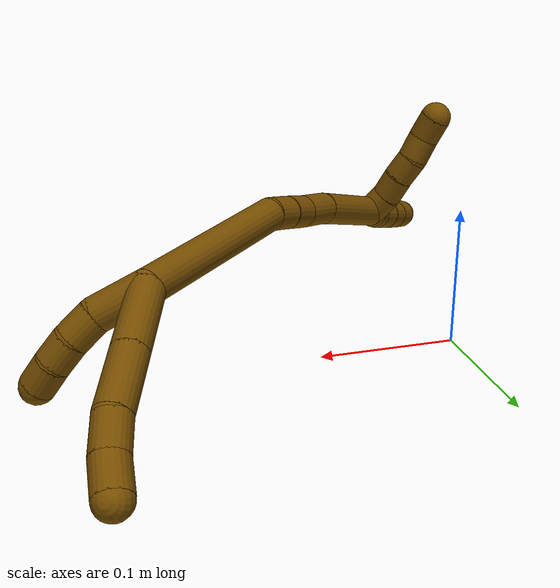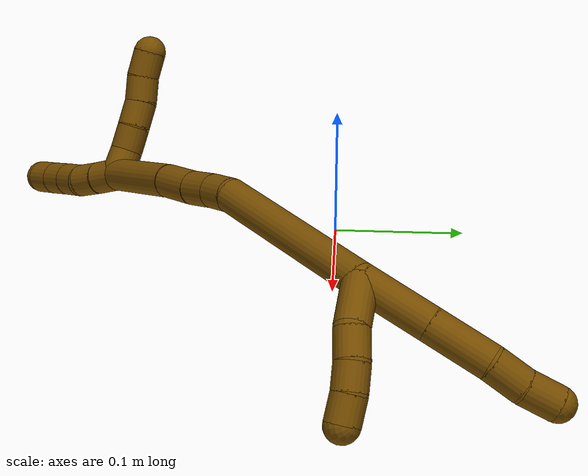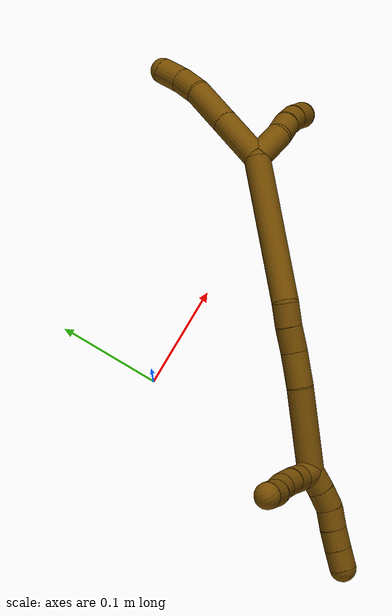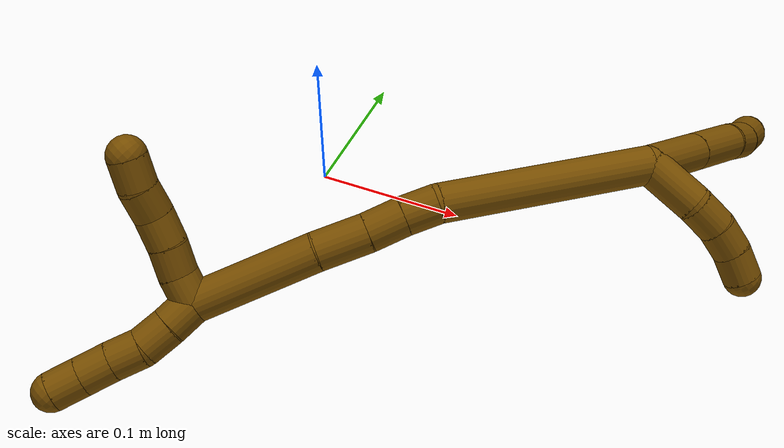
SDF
<sdf version="1.7">
 <world name="default">
  <model name="12">
   <static>0</static>
   <link name="12">
    <collision name="collision-cylinder-e_1_2_8">
     <pose>0.018766 0.008911 -0.01652 -2.6469 0.785291 -2.04652</pose>
     <geometry><cylinder><radius>0.0125</radius><length>0.053085</length></cylinder></geometry>
     <surface>
      <friction><ode><mu>1.16</mu><mu2>1.16</mu2><slip1>0</slip1><slip2>0</slip2></ode></friction>
      <contact><ode><kp>1e+06</kp><kd>1</kd><max_vel>0</max_vel><min_depth>0.001</min_depth></ode></contact>
     </surface>
    </collision>
    <visual name="visual-cylinder-e_1_2_8">
     <pose>0.018766 0.008911 -0.01652 -2.6469 0.785291 -2.04652</pose>
     <geometry><cylinder><radius>0.0125</radius><length>0.053085</length></cylinder></geometry>
     <material><ambient>0.466667 0.301961 0 1</ambient></material>
    </visual>
    <collision name="collision-cylinder-e_2_8_9">
     <pose>0.053809 0.025559 -0.047365 -2.64639 0.78526 -2.04552</pose>
     <geometry><cylinder><radius>0.0125</radius><length>0.046042</length></cylinder></geometry>
     <surface>
      <friction><ode><mu>1.16</mu><mu2>1.16</mu2><slip1>0</slip1><slip2>0</slip2></ode></friction>
      <contact><ode><kp>1e+06</kp><kd>1</kd><max_vel>0</max_vel><min_depth>0.001</min_depth></ode></contact>
     </surface>
    </collision>
    <visual name="visual-cylinder-e_2_8_9">
     <pose>0.053809 0.025559 -0.047365 -2.64639 0.78526 -2.04552</pose>
     <geometry><cylinder><radius>0.0125</radius><length>0.046042</length></cylinder></geometry>
     <material><ambient>0.466667 0.301961 0 1</ambient></material>
    </visual>
    <collision name="collision-cylinder-e_3_9_10">
     <pose>0.080871 0.037087 -0.06766 -2.57581 0.990455 -2.15414</pose>
     <geometry><cylinder><radius>0.0125</radius><length>0.025796</length></cylinder></geometry>
     <surface>
      <friction><ode><mu>1.16</mu><mu2>1.16</mu2><slip1>0</slip1><slip2>0</slip2></ode></friction>
      <contact><ode><kp>1e+06</kp><kd>1</kd><max_vel>0</max_vel><min_depth>0.001</min_depth></ode></contact>
     </surface>
    </collision>
    <visual name="visual-cylinder-e_3_9_10">
     <pose>0.080871 0.037087 -0.06766 -2.57581 0.990455 -2.15414</pose>
     <geometry><cylinder><radius>0.0125</radius><length>0.025796</length></cylinder></geometry>
     <material><ambient>0.466667 0.301961 0 1</ambient></material>
    </visual>
    <collision name="collision-cylinder-e_4_10_6">
     <pose>0.102495 0.042452 -0.079736 -2.88938 1.04385 -2.70766</pose>
     <geometry><cylinder><radius>0.0125</radius><length>0.025077</length></cylinder></geometry>
     <surface>
      <friction><ode><mu>1.16</mu><mu2>1.16</mu2><slip1>0</slip1><slip2>0</slip2></ode></friction>
      <contact><ode><kp>1e+06</kp><kd>1</kd><max_vel>0</max_vel><min_depth>0.001</min_depth></ode></contact>
     </surface>
    </collision>
    <visual name="visual-cylinder-e_4_10_6">
     <pose>0.102495 0.042452 -0.079736 -2.88938 1.04385 -2.70766</pose>
     <geometry><cylinder><radius>0.0125</radius><length>0.025077</length></cylinder></geometry>
     <material><ambient>0.466667 0.301961 0 1</ambient></material>
    </visual>
    <collision name="collision-cylinder-e_1_2_11">
     <pose>-0.000334 0.018708 -0.001585 -1.65532 -0.01778 0.01935</pose>
     <geometry><cylinder><radius>0.0125</radius><length>0.037555</length></cylinder></geometry>
     <surface>
      <friction><ode><mu>1.16</mu><mu2>1.16</mu2><slip1>0</slip1><slip2>0</slip2></ode></friction>
      <contact><ode><kp>1e+06</kp><kd>1</kd><max_vel>0</max_vel><min_depth>0.001</min_depth></ode></contact>
     </surface>
    </collision>
    <visual name="visual-cylinder-e_1_2_11">
     <pose>-0.000334 0.018708 -0.001585 -1.65532 -0.01778 0.01935</pose>
     <geometry><cylinder><radius>0.0125</radius><length>0.037555</length></cylinder></geometry>
     <material><ambient>0.466667 0.301961 0 1</ambient></material>
    </visual>
    <collision name="collision-cylinder-e_2_11_12">
     <pose>0.002323 0.047956 -0.00372 -1.62291 0.276092 -0.290667</pose>
     <geometry><cylinder><radius>0.0125</radius><length>0.021941</length></cylinder></geometry>
     <surface>
      <friction><ode><mu>1.16</mu><mu2>1.16</mu2><slip1>0</slip1><slip2>0</slip2></ode></friction>
      <contact><ode><kp>1e+06</kp><kd>1</kd><max_vel>0</max_vel><min_depth>0.001</min_depth></ode></contact>
     </surface>
    </collision>
    <visual name="visual-cylinder-e_2_11_12">
     <pose>0.002323 0.047956 -0.00372 -1.62291 0.276092 -0.290667</pose>
     <geometry><cylinder><radius>0.0125</radius><length>0.021941</length></cylinder></geometry>
     <material><ambient>0.466667 0.301961 0 1</ambient></material>
    </visual>
    <collision name="collision-cylinder-e_3_12_13">
     <pose>0.008596 0.067892 -0.002925 -1.42867 0.333019 -0.28942</pose>
     <geometry><cylinder><radius>0.0125</radius><length>0.020087</length></cylinder></geometry>
     <surface>
      <friction><ode><mu>1.16</mu><mu2>1.16</mu2><slip1>0</slip1><slip2>0</slip2></ode></friction>
      <contact><ode><kp>1e+06</kp><kd>1</kd><max_vel>0</max_vel><min_depth>0.001</min_depth></ode></contact>
     </surface>
    </collision>
    <visual name="visual-cylinder-e_3_12_13">
     <pose>0.008596 0.067892 -0.002925 -1.42867 0.333019 -0.28942</pose>
     <geometry><cylinder><radius>0.0125</radius><length>0.020087</length></cylinder></geometry>
     <material><ambient>0.466667 0.301961 0 1</ambient></material>
    </visual>
    <collision name="collision-cylinder-e_4_13_5">
     <pose>0.015003 0.086512 0.001482 -1.2502 0.310955 -0.225265</pose>
     <geometry><cylinder><radius>0.0125</radius><length>0.020417</length></cylinder></geometry>
     <surface>
      <friction><ode><mu>1.16</mu><mu2>1.16</mu2><slip1>0</slip1><slip2>0</slip2></ode></friction>
      <contact><ode><kp>1e+06</kp><kd>1</kd><max_vel>0</max_vel><min_depth>0.001</min_depth></ode></contact>
     </surface>
    </collision>
    <visual name="visual-cylinder-e_4_13_5">
     <pose>0.015003 0.086512 0.001482 -1.2502 0.310955 -0.225265</pose>
     <geometry><cylinder><radius>0.0125</radius><length>0.020417</length></cylinder></geometry>
     <material><ambient>0.466667 0.301961 0 1</ambient></material>
    </visual>
    <collision name="collision-cylinder-e_1_2_14">
     <pose>-0.015726 -0.037858 0.05694 0.586758 -0.226065 -0.068559</pose>
     <geometry><cylinder><radius>0.0125</radius><length>0.140324</length></cylinder></geometry>
     <surface>
      <friction><ode><mu>1.16</mu><mu2>1.16</mu2><slip1>0</slip1><slip2>0</slip2></ode></friction>
      <contact><ode><kp>1e+06</kp><kd>1</kd><max_vel>0</max_vel><min_depth>0.001</min_depth></ode></contact>
     </surface>
    </collision>
    <visual name="visual-cylinder-e_1_2_14">
     <pose>-0.015726 -0.037858 0.05694 0.586758 -0.226065 -0.068559</pose>
     <geometry><cylinder><radius>0.0125</radius><length>0.140324</length></cylinder></geometry>
     <material><ambient>0.466667 0.301961 0 1</ambient></material>
    </visual>
    <collision name="collision-cylinder-e_2_14_15">
     <pose>-0.031488 -0.080231 0.12405 0.417867 -0.003157 -0.000669</pose>
     <geometry><cylinder><radius>0.0125</radius><length>0.022255</length></cylinder></geometry>
     <surface>
      <friction><ode><mu>1.16</mu><mu2>1.16</mu2><slip1>0</slip1><slip2>0</slip2></ode></friction>
      <contact><ode><kp>1e+06</kp><kd>1</kd><max_vel>0</max_vel><min_depth>0.001</min_depth></ode></contact>
     </surface>
    </collision>
    <visual name="visual-cylinder-e_2_14_15">
     <pose>-0.031488 -0.080231 0.12405 0.417867 -0.003157 -0.000669</pose>
     <geometry><cylinder><radius>0.0125</radius><length>0.022255</length></cylinder></geometry>
     <material><ambient>0.466667 0.301961 0 1</ambient></material>
    </visual>
    <collision name="collision-cylinder-e_3_15_16">
     <pose>-0.031804 -0.088786 0.145565 0.342061 -0.023288 -0.004022</pose>
     <geometry><cylinder><radius>0.0125</radius><length>0.024092</length></cylinder></geometry>
     <surface>
      <friction><ode><mu>1.16</mu><mu2>1.16</mu2><slip1>0</slip1><slip2>0</slip2></ode></friction>
      <contact><ode><kp>1e+06</kp><kd>1</kd><max_vel>0</max_vel><min_depth>0.001</min_depth></ode></contact>
     </surface>
    </collision>
    <visual name="visual-cylinder-e_3_15_16">
     <pose>-0.031804 -0.088786 0.145565 0.342061 -0.023288 -0.004022</pose>
     <geometry><cylinder><radius>0.0125</radius><length>0.024092</length></cylinder></geometry>
     <material><ambient>0.466667 0.301961 0 1</ambient></material>
    </visual>
    <collision name="collision-cylinder-e_4_16_17">
     <pose>-0.032679 -0.099524 0.171996 0.41782 -0.036005 -0.007634</pose>
     <geometry><cylinder><radius>0.0125</radius><length>0.033034</length></cylinder></geometry>
     <surface>
      <friction><ode><mu>1.16</mu><mu2>1.16</mu2><slip1>0</slip1><slip2>0</slip2></ode></friction>
      <contact><ode><kp>1e+06</kp><kd>1</kd><max_vel>0</max_vel><min_depth>0.001</min_depth></ode></contact>
     </surface>
    </collision>
    <visual name="visual-cylinder-e_4_16_17">
     <pose>-0.032679 -0.099524 0.171996 0.41782 -0.036005 -0.007634</pose>
     <geometry><cylinder><radius>0.0125</radius><length>0.033034</length></cylinder></geometry>
     <material><ambient>0.466667 0.301961 0 1</ambient></material>
    </visual>
    <collision name="collision-cylinder-e_5_17_1">
     <pose>-0.030739 -0.120867 0.224378 0.374189 0.063172 0.011963</pose>
     <geometry><cylinder><radius>0.0125</radius><length>0.080295</length></cylinder></geometry>
     <surface>
      <friction><ode><mu>1.16</mu><mu2>1.16</mu2><slip1>0</slip1><slip2>0</slip2></ode></friction>
      <contact><ode><kp>1e+06</kp><kd>1</kd><max_vel>0</max_vel><min_depth>0.001</min_depth></ode></contact>
     </surface>
    </collision>
    <visual name="visual-cylinder-e_5_17_1">
     <pose>-0.030739 -0.120867 0.224378 0.374189 0.063172 0.011963</pose>
     <geometry><cylinder><radius>0.0125</radius><length>0.080295</length></cylinder></geometry>
     <material><ambient>0.466667 0.301961 0 1</ambient></material>
    </visual>
    <collision name="collision-cylinder-e_1_1_18">
     <pose>-0.029869 -0.144887 0.258615 1.88607 -0.167304 -0.230063</pose>
     <geometry><cylinder><radius>0.0125</radius><length>0.02</length></cylinder></geometry>
     <surface>
      <friction><ode><mu>1.16</mu><mu2>1.16</mu2><slip1>0</slip1><slip2>0</slip2></ode></friction>
      <contact><ode><kp>1e+06</kp><kd>1</kd><max_vel>0</max_vel><min_depth>0.001</min_depth></ode></contact>
     </surface>
    </collision>
    <visual name="visual-cylinder-e_1_1_18">
     <pose>-0.029869 -0.144887 0.258615 1.88607 -0.167304 -0.230063</pose>
     <geometry><cylinder><radius>0.0125</radius><length>0.02</length></cylinder></geometry>
     <material><ambient>0.466667 0.301961 0 1</ambient></material>
    </visual>
    <collision name="collision-cylinder-e_2_18_19">
     <pose>-0.034896 -0.162606 0.251192 2.05274 -0.342799 -0.556934</pose>
     <geometry><cylinder><radius>0.0125</radius><length>0.02</length></cylinder></geometry>
     <surface>
      <friction><ode><mu>1.16</mu><mu2>1.16</mu2><slip1>0</slip1><slip2>0</slip2></ode></friction>
      <contact><ode><kp>1e+06</kp><kd>1</kd><max_vel>0</max_vel><min_depth>0.001</min_depth></ode></contact>
     </surface>
    </collision>
    <visual name="visual-cylinder-e_2_18_19">
     <pose>-0.034896 -0.162606 0.251192 2.05274 -0.342799 -0.556934</pose>
     <geometry><cylinder><radius>0.0125</radius><length>0.02</length></cylinder></geometry>
     <material><ambient>0.466667 0.301961 0 1</ambient></material>
    </visual>
    <collision name="collision-cylinder-e_3_19_20">
     <pose>-0.041195 -0.179837 0.243303 1.94836 -0.298224 -0.435366</pose>
     <geometry><cylinder><radius>0.0125</radius><length>0.02</length></cylinder></geometry>
     <surface>
      <friction><ode><mu>1.16</mu><mu2>1.16</mu2><slip1>0</slip1><slip2>0</slip2></ode></friction>
      <contact><ode><kp>1e+06</kp><kd>1</kd><max_vel>0</max_vel><min_depth>0.001</min_depth></ode></contact>
     </surface>
    </collision>
    <visual name="visual-cylinder-e_3_19_20">
     <pose>-0.041195 -0.179837 0.243303 1.94836 -0.298224 -0.435366</pose>
     <geometry><cylinder><radius>0.0125</radius><length>0.02</length></cylinder></geometry>
     <material><ambient>0.466667 0.301961 0 1</ambient></material>
    </visual>
    <collision name="collision-cylinder-e_4_20_21">
     <pose>-0.048888 -0.197068 0.236997 1.89263 -0.495448 -0.675018</pose>
     <geometry><cylinder><radius>0.0125</radius><length>0.02</length></cylinder></geometry>
     <surface>
      <friction><ode><mu>1.16</mu><mu2>1.16</mu2><slip1>0</slip1><slip2>0</slip2></ode></friction>
      <contact><ode><kp>1e+06</kp><kd>1</kd><max_vel>0</max_vel><min_depth>0.001</min_depth></ode></contact>
     </surface>
    </collision>
    <visual name="visual-cylinder-e_4_20_21">
     <pose>-0.048888 -0.197068 0.236997 1.89263 -0.495448 -0.675018</pose>
     <geometry><cylinder><radius>0.0125</radius><length>0.02</length></cylinder></geometry>
     <material><ambient>0.466667 0.301961 0 1</ambient></material>
    </visual>
    <collision name="collision-cylinder-e_5_21_4">
     <pose>-0.057339 -0.213592 0.229804 2.06535 -0.37872 -0.621395</pose>
     <geometry><cylinder><radius>0.0125</radius><length>0.02</length></cylinder></geometry>
     <surface>
      <friction><ode><mu>1.16</mu><mu2>1.16</mu2><slip1>0</slip1><slip2>0</slip2></ode></friction>
      <contact><ode><kp>1e+06</kp><kd>1</kd><max_vel>0</max_vel><min_depth>0.001</min_depth></ode></contact>
     </surface>
    </collision>
    <visual name="visual-cylinder-e_5_21_4">
     <pose>-0.057339 -0.213592 0.229804 2.06535 -0.37872 -0.621395</pose>
     <geometry><cylinder><radius>0.0125</radius><length>0.02</length></cylinder></geometry>
     <material><ambient>0.466667 0.301961 0 1</ambient></material>
    </visual>
    <collision name="collision-cylinder-e_1_1_22">
     <pose>-0.029271 -0.135679 0.271614 0.016801 -0.106887 -0.000899</pose>
     <geometry><cylinder><radius>0.0125</radius><length>0.02</length></cylinder></geometry>
     <surface>
      <friction><ode><mu>1.16</mu><mu2>1.16</mu2><slip1>0</slip1><slip2>0</slip2></ode></friction>
      <contact><ode><kp>1e+06</kp><kd>1</kd><max_vel>0</max_vel><min_depth>0.001</min_depth></ode></contact>
     </surface>
    </collision>
    <visual name="visual-cylinder-e_1_1_22">
     <pose>-0.029271 -0.135679 0.271614 0.016801 -0.106887 -0.000899</pose>
     <geometry><cylinder><radius>0.0125</radius><length>0.02</length></cylinder></geometry>
     <material><ambient>0.466667 0.301961 0 1</ambient></material>
    </visual>
    <collision name="collision-cylinder-e_2_22_23">
     <pose>-0.031109 -0.136679 0.291491 0.083599 -0.077174 -0.003229</pose>
     <geometry><cylinder><radius>0.0125</radius><length>0.02</length></cylinder></geometry>
     <surface>
      <friction><ode><mu>1.16</mu><mu2>1.16</mu2><slip1>0</slip1><slip2>0</slip2></ode></friction>
      <contact><ode><kp>1e+06</kp><kd>1</kd><max_vel>0</max_vel><min_depth>0.001</min_depth></ode></contact>
     </surface>
    </collision>
    <visual name="visual-cylinder-e_2_22_23">
     <pose>-0.031109 -0.136679 0.291491 0.083599 -0.077174 -0.003229</pose>
     <geometry><cylinder><radius>0.0125</radius><length>0.02</length></cylinder></geometry>
     <material><ambient>0.466667 0.301961 0 1</ambient></material>
    </visual>
    <collision name="collision-cylinder-e_3_23_24">
     <pose>-0.031659 -0.140902 0.310831 0.346066 0.022093 0.003862</pose>
     <geometry><cylinder><radius>0.0125</radius><length>0.02</length></cylinder></geometry>
     <surface>
      <friction><ode><mu>1.16</mu><mu2>1.16</mu2><slip1>0</slip1><slip2>0</slip2></ode></friction>
      <contact><ode><kp>1e+06</kp><kd>1</kd><max_vel>0</max_vel><min_depth>0.001</min_depth></ode></contact>
     </surface>
    </collision>
    <visual name="visual-cylinder-e_3_23_24">
     <pose>-0.031659 -0.140902 0.310831 0.346066 0.022093 0.003862</pose>
     <geometry><cylinder><radius>0.0125</radius><length>0.02</length></cylinder></geometry>
     <material><ambient>0.466667 0.301961 0 1</ambient></material>
    </visual>
    <collision name="collision-cylinder-e_4_24_25">
     <pose>-0.03157 -0.147267 0.329783 0.301902 -0.013171 -0.002003</pose>
     <geometry><cylinder><radius>0.0125</radius><length>0.02</length></cylinder></geometry>
     <surface>
      <friction><ode><mu>1.16</mu><mu2>1.16</mu2><slip1>0</slip1><slip2>0</slip2></ode></friction>
      <contact><ode><kp>1e+06</kp><kd>1</kd><max_vel>0</max_vel><min_depth>0.001</min_depth></ode></contact>
     </surface>
    </collision>
    <visual name="visual-cylinder-e_4_24_25">
     <pose>-0.03157 -0.147267 0.329783 0.301902 -0.013171 -0.002003</pose>
     <geometry><cylinder><radius>0.0125</radius><length>0.02</length></cylinder></geometry>
     <material><ambient>0.466667 0.301961 0 1</ambient></material>
    </visual>
    <collision name="collision-cylinder-e_5_25_3">
     <pose>-0.032101 -0.153215 0.348869 0.302292 -0.040006 -0.006094</pose>
     <geometry><cylinder><radius>0.0125</radius><length>0.02</length></cylinder></geometry>
     <surface>
      <friction><ode><mu>1.16</mu><mu2>1.16</mu2><slip1>0</slip1><slip2>0</slip2></ode></friction>
      <contact><ode><kp>1e+06</kp><kd>1</kd><max_vel>0</max_vel><min_depth>0.001</min_depth></ode></contact>
     </surface>
    </collision>
    <visual name="visual-cylinder-e_5_25_3">
     <pose>-0.032101 -0.153215 0.348869 0.302292 -0.040006 -0.006094</pose>
     <geometry><cylinder><radius>0.0125</radius><length>0.02</length></cylinder></geometry>
     <material><ambient>0.466667 0.301961 0 1</ambient></material>
    </visual>
    <collision name="collision-sphere-3">
     <pose>-0.032501 -0.156189 0.358408 0 -0 0</pose>
     <geometry><sphere><radius>0.0125</radius></sphere></geometry>
     <surface>
      <friction><ode><mu>1.16</mu><mu2>1.16</mu2><slip1>0</slip1><slip2>0</slip2></ode></friction>
      <contact><ode><kp>1e+06</kp><kd>1</kd><max_vel>0</max_vel><min_depth>0.001</min_depth></ode></contact>
     </surface>
    </collision>
    <visual name="visual-sphere-3">
     <pose>-0.032501 -0.156189 0.358408 0 -0 0</pose>
     <geometry><sphere><radius>0.0125</radius></sphere></geometry>
     <material><ambient>0.466667 0.301961 0 1</ambient></material>
    </visual>
    <collision name="collision-sphere-25">
     <pose>-0.031701 -0.15024 0.33933 0 -0 0</pose>
     <geometry><sphere><radius>0.0125</radius></sphere></geometry>
     <surface>
      <friction><ode><mu>1.16</mu><mu2>1.16</mu2><slip1>0</slip1><slip2>0</slip2></ode></friction>
      <contact><ode><kp>1e+06</kp><kd>1</kd><max_vel>0</max_vel><min_depth>0.001</min_depth></ode></contact>
     </surface>
    </collision>
    <visual name="visual-sphere-25">
     <pose>-0.031701 -0.15024 0.33933 0 -0 0</pose>
     <geometry><sphere><radius>0.0125</radius></sphere></geometry>
     <material><ambient>0.466667 0.301961 0 1</ambient></material>
    </visual>
    <collision name="collision-sphere-24">
     <pose>-0.031438 -0.144294 0.320236 0 -0 0</pose>
     <geometry><sphere><radius>0.0125</radius></sphere></geometry>
     <surface>
      <friction><ode><mu>1.16</mu><mu2>1.16</mu2><slip1>0</slip1><slip2>0</slip2></ode></friction>
      <contact><ode><kp>1e+06</kp><kd>1</kd><max_vel>0</max_vel><min_depth>0.001</min_depth></ode></contact>
     </surface>
    </collision>
    <visual name="visual-sphere-24">
     <pose>-0.031438 -0.144294 0.320236 0 -0 0</pose>
     <geometry><sphere><radius>0.0125</radius></sphere></geometry>
     <material><ambient>0.466667 0.301961 0 1</ambient></material>
    </visual>
    <collision name="collision-sphere-23">
     <pose>-0.03188 -0.137511 0.301427 0 -0 0</pose>
     <geometry><sphere><radius>0.0125</radius></sphere></geometry>
     <surface>
      <friction><ode><mu>1.16</mu><mu2>1.16</mu2><slip1>0</slip1><slip2>0</slip2></ode></friction>
      <contact><ode><kp>1e+06</kp><kd>1</kd><max_vel>0</max_vel><min_depth>0.001</min_depth></ode></contact>
     </surface>
    </collision>
    <visual name="visual-sphere-23">
     <pose>-0.03188 -0.137511 0.301427 0 -0 0</pose>
     <geometry><sphere><radius>0.0125</radius></sphere></geometry>
     <material><ambient>0.466667 0.301961 0 1</ambient></material>
    </visual>
    <collision name="collision-sphere-22">
     <pose>-0.030338 -0.135846 0.281556 0 -0 0</pose>
     <geometry><sphere><radius>0.0125</radius></sphere></geometry>
     <surface>
      <friction><ode><mu>1.16</mu><mu2>1.16</mu2><slip1>0</slip1><slip2>0</slip2></ode></friction>
      <contact><ode><kp>1e+06</kp><kd>1</kd><max_vel>0</max_vel><min_depth>0.001</min_depth></ode></contact>
     </surface>
    </collision>
    <visual name="visual-sphere-22">
     <pose>-0.030338 -0.135846 0.281556 0 -0 0</pose>
     <geometry><sphere><radius>0.0125</radius></sphere></geometry>
     <material><ambient>0.466667 0.301961 0 1</ambient></material>
    </visual>
    <collision name="collision-sphere-4">
     <pose>-0.061037 -0.22177 0.225394 0 -0 0</pose>
     <geometry><sphere><radius>0.0125</radius></sphere></geometry>
     <surface>
      <friction><ode><mu>1.16</mu><mu2>1.16</mu2><slip1>0</slip1><slip2>0</slip2></ode></friction>
      <contact><ode><kp>1e+06</kp><kd>1</kd><max_vel>0</max_vel><min_depth>0.001</min_depth></ode></contact>
     </surface>
    </collision>
    <visual name="visual-sphere-4">
     <pose>-0.061037 -0.22177 0.225394 0 -0 0</pose>
     <geometry><sphere><radius>0.0125</radius></sphere></geometry>
     <material><ambient>0.466667 0.301961 0 1</ambient></material>
    </visual>
    <collision name="collision-sphere-21">
     <pose>-0.053642 -0.205414 0.234214 0 -0 0</pose>
     <geometry><sphere><radius>0.0125</radius></sphere></geometry>
     <surface>
      <friction><ode><mu>1.16</mu><mu2>1.16</mu2><slip1>0</slip1><slip2>0</slip2></ode></friction>
      <contact><ode><kp>1e+06</kp><kd>1</kd><max_vel>0</max_vel><min_depth>0.001</min_depth></ode></contact>
     </surface>
    </collision>
    <visual name="visual-sphere-21">
     <pose>-0.053642 -0.205414 0.234214 0 -0 0</pose>
     <geometry><sphere><radius>0.0125</radius></sphere></geometry>
     <material><ambient>0.466667 0.301961 0 1</ambient></material>
    </visual>
    <collision name="collision-sphere-20">
     <pose>-0.044134 -0.188722 0.239779 0 -0 0</pose>
     <geometry><sphere><radius>0.0125</radius></sphere></geometry>
     <surface>
      <friction><ode><mu>1.16</mu><mu2>1.16</mu2><slip1>0</slip1><slip2>0</slip2></ode></friction>
      <contact><ode><kp>1e+06</kp><kd>1</kd><max_vel>0</max_vel><min_depth>0.001</min_depth></ode></contact>
     </surface>
    </collision>
    <visual name="visual-sphere-20">
     <pose>-0.044134 -0.188722 0.239779 0 -0 0</pose>
     <geometry><sphere><radius>0.0125</radius></sphere></geometry>
     <material><ambient>0.466667 0.301961 0 1</ambient></material>
    </visual>
    <collision name="collision-sphere-11">
     <pose>-0.000668 0.037415 -0.00317 0 -0 0</pose>
     <geometry><sphere><radius>0.0125</radius></sphere></geometry>
     <surface>
      <friction><ode><mu>1.16</mu><mu2>1.16</mu2><slip1>0</slip1><slip2>0</slip2></ode></friction>
      <contact><ode><kp>1e+06</kp><kd>1</kd><max_vel>0</max_vel><min_depth>0.001</min_depth></ode></contact>
     </surface>
    </collision>
    <visual name="visual-sphere-11">
     <pose>-0.000668 0.037415 -0.00317 0 -0 0</pose>
     <geometry><sphere><radius>0.0125</radius></sphere></geometry>
     <material><ambient>0.466667 0.301961 0 1</ambient></material>
    </visual>
    <collision name="collision-sphere-6">
     <pose>0.113333 0.044026 -0.085842 0 -0 0</pose>
     <geometry><sphere><radius>0.0125</radius></sphere></geometry>
     <surface>
      <friction><ode><mu>1.16</mu><mu2>1.16</mu2><slip1>0</slip1><slip2>0</slip2></ode></friction>
      <contact><ode><kp>1e+06</kp><kd>1</kd><max_vel>0</max_vel><min_depth>0.001</min_depth></ode></contact>
     </surface>
    </collision>
    <visual name="visual-sphere-6">
     <pose>0.113333 0.044026 -0.085842 0 -0 0</pose>
     <geometry><sphere><radius>0.0125</radius></sphere></geometry>
     <material><ambient>0.466667 0.301961 0 1</ambient></material>
    </visual>
    <collision name="collision-sphere-10">
     <pose>0.091657 0.040879 -0.07363 0 -0 0</pose>
     <geometry><sphere><radius>0.0125</radius></sphere></geometry>
     <surface>
      <friction><ode><mu>1.16</mu><mu2>1.16</mu2><slip1>0</slip1><slip2>0</slip2></ode></friction>
      <contact><ode><kp>1e+06</kp><kd>1</kd><max_vel>0</max_vel><min_depth>0.001</min_depth></ode></contact>
     </surface>
    </collision>
    <visual name="visual-sphere-10">
     <pose>0.091657 0.040879 -0.07363 0 -0 0</pose>
     <geometry><sphere><radius>0.0125</radius></sphere></geometry>
     <material><ambient>0.466667 0.301961 0 1</ambient></material>
    </visual>
    <collision name="collision-sphere-9">
     <pose>0.070085 0.033296 -0.06169 0 -0 0</pose>
     <geometry><sphere><radius>0.0125</radius></sphere></geometry>
     <surface>
      <friction><ode><mu>1.16</mu><mu2>1.16</mu2><slip1>0</slip1><slip2>0</slip2></ode></friction>
      <contact><ode><kp>1e+06</kp><kd>1</kd><max_vel>0</max_vel><min_depth>0.001</min_depth></ode></contact>
     </surface>
    </collision>
    <visual name="visual-sphere-9">
     <pose>0.070085 0.033296 -0.06169 0 -0 0</pose>
     <geometry><sphere><radius>0.0125</radius></sphere></geometry>
     <material><ambient>0.466667 0.301961 0 1</ambient></material>
    </visual>
    <collision name="collision-sphere-2">
     <geometry><sphere><radius>0.0125</radius></sphere></geometry>
     <surface>
      <friction><ode><mu>1.16</mu><mu2>1.16</mu2><slip1>0</slip1><slip2>0</slip2></ode></friction>
      <contact><ode><kp>1e+06</kp><kd>1</kd><max_vel>0</max_vel><min_depth>0.001</min_depth></ode></contact>
     </surface>
    </collision>
    <visual name="visual-sphere-2">
     <geometry><sphere><radius>0.0125</radius></sphere></geometry>
     <material><ambient>0.466667 0.301961 0 1</ambient></material>
    </visual>
    <collision name="collision-sphere-19">
     <pose>-0.038257 -0.170952 0.246827 0 -0 0</pose>
     <geometry><sphere><radius>0.0125</radius></sphere></geometry>
     <surface>
      <friction><ode><mu>1.16</mu><mu2>1.16</mu2><slip1>0</slip1><slip2>0</slip2></ode></friction>
      <contact><ode><kp>1e+06</kp><kd>1</kd><max_vel>0</max_vel><min_depth>0.001</min_depth></ode></contact>
     </surface>
    </collision>
    <visual name="visual-sphere-19">
     <pose>-0.038257 -0.170952 0.246827 0 -0 0</pose>
     <geometry><sphere><radius>0.0125</radius></sphere></geometry>
     <material><ambient>0.466667 0.301961 0 1</ambient></material>
    </visual>
    <collision name="collision-sphere-8">
     <pose>0.037532 0.017823 -0.03304 0 -0 0</pose>
     <geometry><sphere><radius>0.0125</radius></sphere></geometry>
     <surface>
      <friction><ode><mu>1.16</mu><mu2>1.16</mu2><slip1>0</slip1><slip2>0</slip2></ode></friction>
      <contact><ode><kp>1e+06</kp><kd>1</kd><max_vel>0</max_vel><min_depth>0.001</min_depth></ode></contact>
     </surface>
    </collision>
    <visual name="visual-sphere-8">
     <pose>0.037532 0.017823 -0.03304 0 -0 0</pose>
     <geometry><sphere><radius>0.0125</radius></sphere></geometry>
     <material><ambient>0.466667 0.301961 0 1</ambient></material>
    </visual>
    <collision name="collision-sphere-12">
     <pose>0.005313 0.058496 -0.00427 0 -0 0</pose>
     <geometry><sphere><radius>0.0125</radius></sphere></geometry>
     <surface>
      <friction><ode><mu>1.16</mu><mu2>1.16</mu2><slip1>0</slip1><slip2>0</slip2></ode></friction>
      <contact><ode><kp>1e+06</kp><kd>1</kd><max_vel>0</max_vel><min_depth>0.001</min_depth></ode></contact>
     </surface>
    </collision>
    <visual name="visual-sphere-12">
     <pose>0.005313 0.058496 -0.00427 0 -0 0</pose>
     <geometry><sphere><radius>0.0125</radius></sphere></geometry>
     <material><ambient>0.466667 0.301961 0 1</ambient></material>
    </visual>
    <collision name="collision-sphere-13">
     <pose>0.01188 0.077288 -0.001581 0 -0 0</pose>
     <geometry><sphere><radius>0.0125</radius></sphere></geometry>
     <surface>
      <friction><ode><mu>1.16</mu><mu2>1.16</mu2><slip1>0</slip1><slip2>0</slip2></ode></friction>
      <contact><ode><kp>1e+06</kp><kd>1</kd><max_vel>0</max_vel><min_depth>0.001</min_depth></ode></contact>
     </surface>
    </collision>
    <visual name="visual-sphere-13">
     <pose>0.01188 0.077288 -0.001581 0 -0 0</pose>
     <geometry><sphere><radius>0.0125</radius></sphere></geometry>
     <material><ambient>0.466667 0.301961 0 1</ambient></material>
    </visual>
    <collision name="collision-sphere-5">
     <pose>0.018127 0.095736 0.004545 0 -0 0</pose>
     <geometry><sphere><radius>0.0125</radius></sphere></geometry>
     <surface>
      <friction><ode><mu>1.16</mu><mu2>1.16</mu2><slip1>0</slip1><slip2>0</slip2></ode></friction>
      <contact><ode><kp>1e+06</kp><kd>1</kd><max_vel>0</max_vel><min_depth>0.001</min_depth></ode></contact>
     </surface>
    </collision>
    <visual name="visual-sphere-5">
     <pose>0.018127 0.095736 0.004545 0 -0 0</pose>
     <geometry><sphere><radius>0.0125</radius></sphere></geometry>
     <material><ambient>0.466667 0.301961 0 1</ambient></material>
    </visual>
    <collision name="collision-sphere-14">
     <pose>-0.031453 -0.075716 0.11388 0 -0 0</pose>
     <geometry><sphere><radius>0.0125</radius></sphere></geometry>
     <surface>
      <friction><ode><mu>1.16</mu><mu2>1.16</mu2><slip1>0</slip1><slip2>0</slip2></ode></friction>
      <contact><ode><kp>1e+06</kp><kd>1</kd><max_vel>0</max_vel><min_depth>0.001</min_depth></ode></contact>
     </surface>
    </collision>
    <visual name="visual-sphere-14">
     <pose>-0.031453 -0.075716 0.11388 0 -0 0</pose>
     <geometry><sphere><radius>0.0125</radius></sphere></geometry>
     <material><ambient>0.466667 0.301961 0 1</ambient></material>
    </visual>
    <collision name="collision-sphere-15">
     <pose>-0.031523 -0.084747 0.13422 0 -0 0</pose>
     <geometry><sphere><radius>0.0125</radius></sphere></geometry>
     <surface>
      <friction><ode><mu>1.16</mu><mu2>1.16</mu2><slip1>0</slip1><slip2>0</slip2></ode></friction>
      <contact><ode><kp>1e+06</kp><kd>1</kd><max_vel>0</max_vel><min_depth>0.001</min_depth></ode></contact>
     </surface>
    </collision>
    <visual name="visual-sphere-15">
     <pose>-0.031523 -0.084747 0.13422 0 -0 0</pose>
     <geometry><sphere><radius>0.0125</radius></sphere></geometry>
     <material><ambient>0.466667 0.301961 0 1</ambient></material>
    </visual>
    <collision name="collision-sphere-16">
     <pose>-0.032084 -0.092826 0.15691 0 -0 0</pose>
     <geometry><sphere><radius>0.0125</radius></sphere></geometry>
     <surface>
      <friction><ode><mu>1.16</mu><mu2>1.16</mu2><slip1>0</slip1><slip2>0</slip2></ode></friction>
      <contact><ode><kp>1e+06</kp><kd>1</kd><max_vel>0</max_vel><min_depth>0.001</min_depth></ode></contact>
     </surface>
    </collision>
    <visual name="visual-sphere-16">
     <pose>-0.032084 -0.092826 0.15691 0 -0 0</pose>
     <geometry><sphere><radius>0.0125</radius></sphere></geometry>
     <material><ambient>0.466667 0.301961 0 1</ambient></material>
    </visual>
    <collision name="collision-sphere-17">
     <pose>-0.033273 -0.106221 0.187083 0 -0 0</pose>
     <geometry><sphere><radius>0.0125</radius></sphere></geometry>
     <surface>
      <friction><ode><mu>1.16</mu><mu2>1.16</mu2><slip1>0</slip1><slip2>0</slip2></ode></friction>
      <contact><ode><kp>1e+06</kp><kd>1</kd><max_vel>0</max_vel><min_depth>0.001</min_depth></ode></contact>
     </surface>
    </collision>
    <visual name="visual-sphere-17">
     <pose>-0.033273 -0.106221 0.187083 0 -0 0</pose>
     <geometry><sphere><radius>0.0125</radius></sphere></geometry>
     <material><ambient>0.466667 0.301961 0 1</ambient></material>
    </visual>
    <collision name="collision-sphere-1">
     <pose>-0.028204 -0.135512 0.261673 0 -0 0</pose>
     <geometry><sphere><radius>0.0125</radius></sphere></geometry>
     <surface>
      <friction><ode><mu>1.16</mu><mu2>1.16</mu2><slip1>0</slip1><slip2>0</slip2></ode></friction>
      <contact><ode><kp>1e+06</kp><kd>1</kd><max_vel>0</max_vel><min_depth>0.001</min_depth></ode></contact>
     </surface>
    </collision>
    <visual name="visual-sphere-1">
     <pose>-0.028204 -0.135512 0.261673 0 -0 0</pose>
     <geometry><sphere><radius>0.0125</radius></sphere></geometry>
     <material><ambient>0.466667 0.301961 0 1</ambient></material>
    </visual>
    <collision name="collision-sphere-18">
     <pose>-0.031535 -0.154261 0.255558 0 -0 0</pose>
     <geometry><sphere><radius>0.0125</radius></sphere></geometry>
     <surface>
      <friction><ode><mu>1.16</mu><mu2>1.16</mu2><slip1>0</slip1><slip2>0</slip2></ode></friction>
      <contact><ode><kp>1e+06</kp><kd>1</kd><max_vel>0</max_vel><min_depth>0.001</min_depth></ode></contact>
     </surface>
    </collision>
    <visual name="visual-sphere-18">
     <pose>-0.031535 -0.154261 0.255558 0 -0 0</pose>
     <geometry><sphere><radius>0.0125</radius></sphere></geometry>
     <material><ambient>0.466667 0.301961 0 1</ambient></material>
    </visual>
    <inertial>
     <pose>-0.007909 -0.061211 0.115245 0 -0 0</pose>
     <mass>0.75</mass>
     <inertia>
      <ixx>0.000266</ixx>
      <ixy>0</ixy>
      <ixz>0</ixz>
      <iyy>0.000232</iyy>
      <iyz>0</iyz>
      <izz>0.000185</izz>
     </inertia>
    </inertial>
   </link>
   <pose>0.222556 0.019406 0.076117 -2.30755 0.797861 2.02338</pose>
  </model>
 </world>
</sdf>
